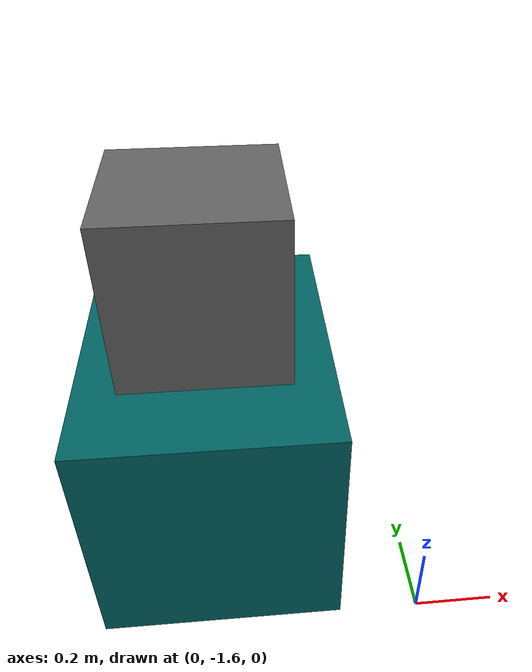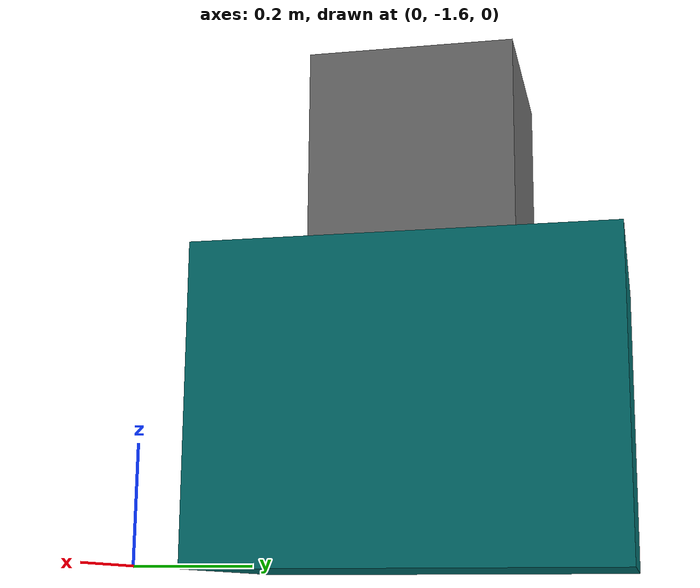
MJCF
<mujoco>
    <worldbody>
        <body name="bottom_box" pos="-0.5 -1.2 .3" euler="0 0 0">
            <joint type = "free"/>
            <geom type="box" size=".3 .4 .3" rgba="0 .4 .4 1"/>
        </body>

        <body name="top_box" pos="-0.5 -1.2 .8" euler="0 0 0">
            <joint type = "free"/>
            <geom type="box" size=".2 .2 .2" rgba="0.4 .4 .4 1"/>
        </body>

    </worldbody>
</mujoco>
